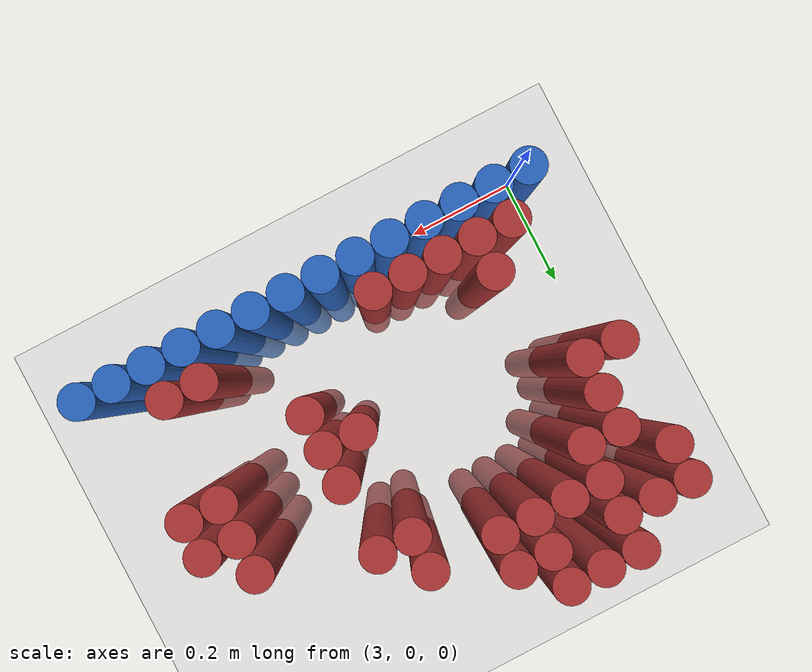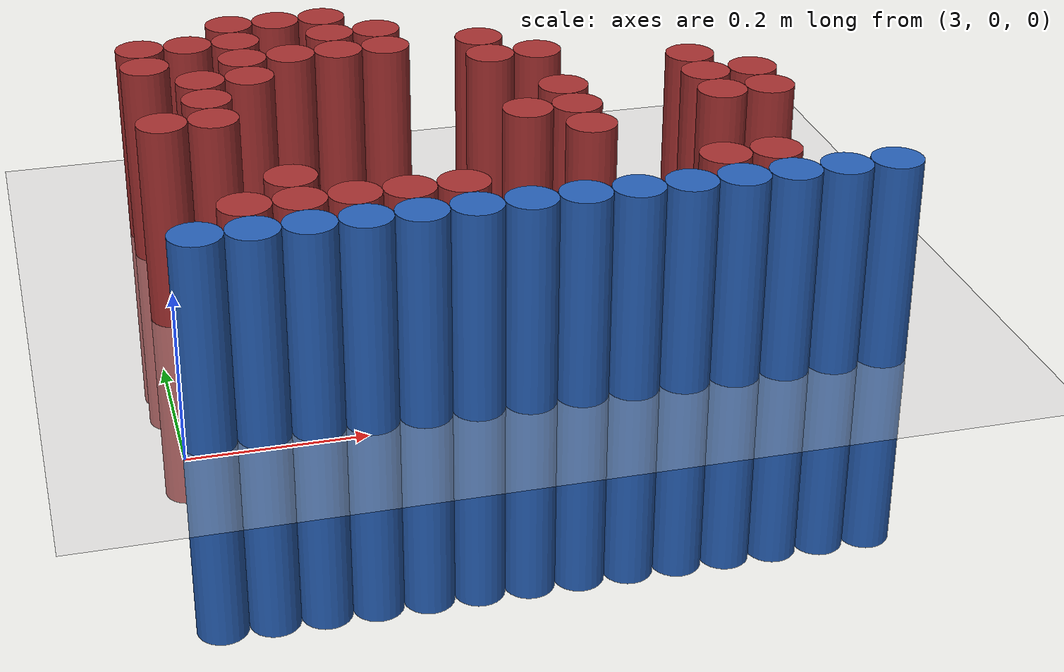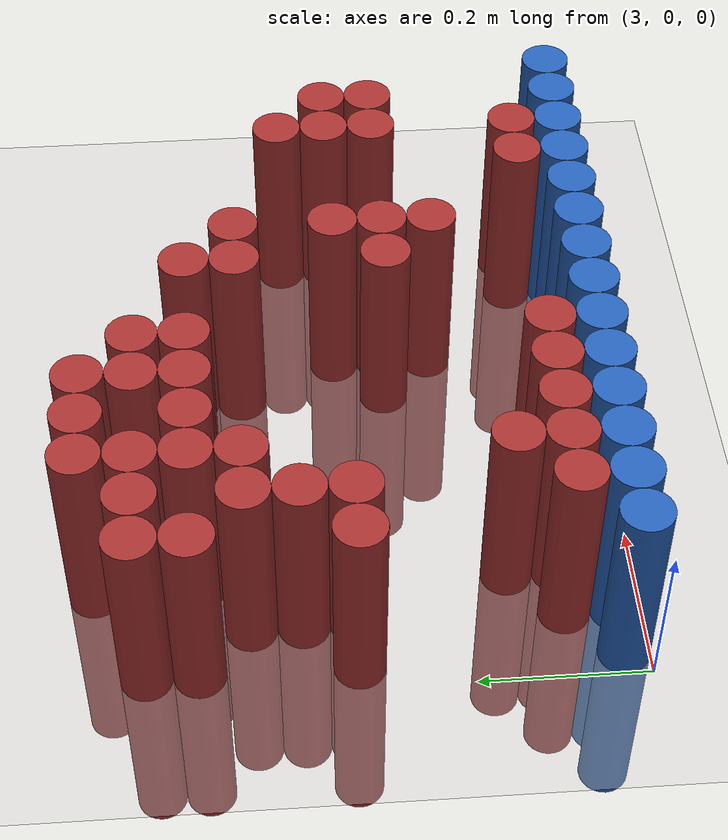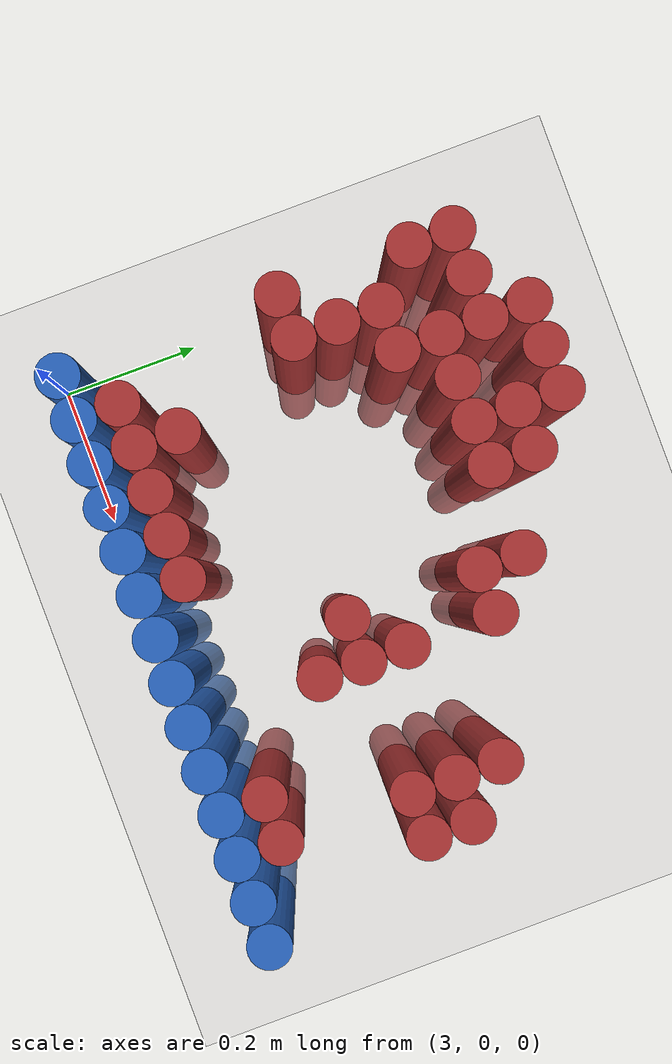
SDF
<sdf version="1.6">
 <world name="default">
  <model name="ground_plane">
   <static>1</static>
   <link name="link">
    <collision name="collision">
     <geometry><plane><normal>0 0 1</normal><size>100 100</size></plane></geometry>
     <surface><friction><ode><mu>100</mu><mu2>50</mu2></ode></friction></surface>
    </collision>
    <visual name="visual">
     <cast_shadows>0</cast_shadows>
     <geometry><plane><normal>0 0 1</normal><size>100 100</size></plane></geometry>
     <material>
      <script><uri>file://media/materials/scripts/gazebo.material</uri><name>Gazebo/Grey</name></script>
     </material>
    </visual>
   </link>
  </model>
  <model name="unit_cylinder_247">
   <static>1</static>
   <pose>3.150000 0.630000 0.000000 0.000000 0.000000 0.000000</pose>
   <link name="link">
    <inertial>
     <mass>1</mass>
     <inertia><ixx>0.145833</ixx><ixy>0</ixy><ixz>0</ixz><iyy>0.145833</iyy><iyz>0</iyz><izz>0.125</izz></inertia>
    </inertial>
    <collision name="collision">
     <geometry><cylinder><radius>0.030000</radius><length>0.5</length></cylinder></geometry>
    </collision>
    <visual name="visual">
     <geometry><cylinder><radius>0.030000</radius><length>0.5</length></cylinder></geometry>
     <material>
      <ambient>0.648000 0.192000 0.192000 1</ambient>
      <diffuse>0.648000 0.192000 0.192000 1</diffuse>
     </material>
     <material>
      <script><name>Gazebo/Grey</name><uri>file://media/materials/scripts/gazebo.material</uri></script>
     </material>
    </visual>
   </link>
  </model>
  <model name="unit_cylinder_248">
   <static>1</static>
   <pose>3.210000 0.630000 0.000000 0.000000 0.000000 0.000000</pose>
   <link name="link">
    <inertial>
     <mass>1</mass>
     <inertia><ixx>0.145833</ixx><ixy>0</ixy><ixz>0</ixz><iyy>0.145833</iyy><iyz>0</iyz><izz>0.125</izz></inertia>
    </inertial>
    <collision name="collision">
     <geometry><cylinder><radius>0.030000</radius><length>0.5</length></cylinder></geometry>
    </collision>
    <visual name="visual">
     <geometry><cylinder><radius>0.030000</radius><length>0.5</length></cylinder></geometry>
     <material>
      <ambient>0.648000 0.192000 0.192000 1</ambient>
      <diffuse>0.648000 0.192000 0.192000 1</diffuse>
     </material>
     <material>
      <script><name>Gazebo/Grey</name><uri>file://media/materials/scripts/gazebo.material</uri></script>
     </material>
    </visual>
   </link>
  </model>
  <model name="unit_cylinder_249">
   <static>1</static>
   <pose>3.270000 0.630000 0.000000 0.000000 0.000000 0.000000</pose>
   <link name="link">
    <inertial>
     <mass>1</mass>
     <inertia><ixx>0.145833</ixx><ixy>0</ixy><ixz>0</ixz><iyy>0.145833</iyy><iyz>0</iyz><izz>0.125</izz></inertia>
    </inertial>
    <collision name="collision">
     <geometry><cylinder><radius>0.030000</radius><length>0.5</length></cylinder></geometry>
    </collision>
    <visual name="visual">
     <geometry><cylinder><radius>0.030000</radius><length>0.5</length></cylinder></geometry>
     <material>
      <ambient>0.648000 0.192000 0.192000 1</ambient>
      <diffuse>0.648000 0.192000 0.192000 1</diffuse>
     </material>
     <material>
      <script><name>Gazebo/Grey</name><uri>file://media/materials/scripts/gazebo.material</uri></script>
     </material>
    </visual>
   </link>
  </model>
  <model name="unit_cylinder_258">
   <static>1</static>
   <pose>3.030000 0.570000 0.000000 0.000000 0.000000 0.000000</pose>
   <link name="link">
    <inertial>
     <mass>1</mass>
     <inertia><ixx>0.145833</ixx><ixy>0</ixy><ixz>0</ixz><iyy>0.145833</iyy><iyz>0</iyz><izz>0.125</izz></inertia>
    </inertial>
    <collision name="collision">
     <geometry><cylinder><radius>0.030000</radius><length>0.5</length></cylinder></geometry>
    </collision>
    <visual name="visual">
     <geometry><cylinder><radius>0.030000</radius><length>0.5</length></cylinder></geometry>
     <material>
      <ambient>0.648000 0.192000 0.192000 1</ambient>
      <diffuse>0.648000 0.192000 0.192000 1</diffuse>
     </material>
     <material>
      <script><name>Gazebo/Grey</name><uri>file://media/materials/scripts/gazebo.material</uri></script>
     </material>
    </visual>
   </link>
  </model>
  <model name="unit_cylinder_259">
   <static>1</static>
   <pose>3.090000 0.570000 0.000000 0.000000 0.000000 0.000000</pose>
   <link name="link">
    <inertial>
     <mass>1</mass>
     <inertia><ixx>0.145833</ixx><ixy>0</ixy><ixz>0</ixz><iyy>0.145833</iyy><iyz>0</iyz><izz>0.125</izz></inertia>
    </inertial>
    <collision name="collision">
     <geometry><cylinder><radius>0.030000</radius><length>0.5</length></cylinder></geometry>
    </collision>
    <visual name="visual">
     <geometry><cylinder><radius>0.030000</radius><length>0.5</length></cylinder></geometry>
     <material>
      <ambient>0.648000 0.192000 0.192000 1</ambient>
      <diffuse>0.648000 0.192000 0.192000 1</diffuse>
     </material>
     <material>
      <script><name>Gazebo/Grey</name><uri>file://media/materials/scripts/gazebo.material</uri></script>
     </material>
    </visual>
   </link>
  </model>
  <model name="unit_cylinder_260">
   <static>1</static>
   <pose>3.150000 0.570000 0.000000 0.000000 0.000000 0.000000</pose>
   <link name="link">
    <inertial>
     <mass>1</mass>
     <inertia><ixx>0.145833</ixx><ixy>0</ixy><ixz>0</ixz><iyy>0.145833</iyy><iyz>0</iyz><izz>0.125</izz></inertia>
    </inertial>
    <collision name="collision">
     <geometry><cylinder><radius>0.030000</radius><length>0.5</length></cylinder></geometry>
    </collision>
    <visual name="visual">
     <geometry><cylinder><radius>0.030000</radius><length>0.5</length></cylinder></geometry>
     <material>
      <ambient>0.648000 0.192000 0.192000 1</ambient>
      <diffuse>0.648000 0.192000 0.192000 1</diffuse>
     </material>
     <material>
      <script><name>Gazebo/Grey</name><uri>file://media/materials/scripts/gazebo.material</uri></script>
     </material>
    </visual>
   </link>
  </model>
  <model name="unit_cylinder_261">
   <static>1</static>
   <pose>3.270000 0.570000 0.000000 0.000000 0.000000 0.000000</pose>
   <link name="link">
    <inertial>
     <mass>1</mass>
     <inertia><ixx>0.145833</ixx><ixy>0</ixy><ixz>0</ixz><iyy>0.145833</iyy><iyz>0</iyz><izz>0.125</izz></inertia>
    </inertial>
    <collision name="collision">
     <geometry><cylinder><radius>0.030000</radius><length>0.5</length></cylinder></geometry>
    </collision>
    <visual name="visual">
     <geometry><cylinder><radius>0.030000</radius><length>0.5</length></cylinder></geometry>
     <material>
      <ambient>0.648000 0.192000 0.192000 1</ambient>
      <diffuse>0.648000 0.192000 0.192000 1</diffuse>
     </material>
     <material>
      <script><name>Gazebo/Grey</name><uri>file://media/materials/scripts/gazebo.material</uri></script>
     </material>
    </visual>
   </link>
  </model>
  <model name="unit_cylinder_262">
   <static>1</static>
   <pose>3.330000 0.570000 0.000000 0.000000 0.000000 0.000000</pose>
   <link name="link">
    <inertial>
     <mass>1</mass>
     <inertia><ixx>0.145833</ixx><ixy>0</ixy><ixz>0</ixz><iyy>0.145833</iyy><iyz>0</iyz><izz>0.125</izz></inertia>
    </inertial>
    <collision name="collision">
     <geometry><cylinder><radius>0.030000</radius><length>0.5</length></cylinder></geometry>
    </collision>
    <visual name="visual">
     <geometry><cylinder><radius>0.030000</radius><length>0.5</length></cylinder></geometry>
     <material>
      <ambient>0.648000 0.192000 0.192000 1</ambient>
      <diffuse>0.648000 0.192000 0.192000 1</diffuse>
     </material>
     <material>
      <script><name>Gazebo/Grey</name><uri>file://media/materials/scripts/gazebo.material</uri></script>
     </material>
    </visual>
   </link>
  </model>
  <model name="unit_cylinder_271">
   <static>1</static>
   <pose>3.030000 0.510000 0.000000 0.000000 0.000000 0.000000</pose>
   <link name="link">
    <inertial>
     <mass>1</mass>
     <inertia><ixx>0.145833</ixx><ixy>0</ixy><ixz>0</ixz><iyy>0.145833</iyy><iyz>0</iyz><izz>0.125</izz></inertia>
    </inertial>
    <collision name="collision">
     <geometry><cylinder><radius>0.030000</radius><length>0.5</length></cylinder></geometry>
    </collision>
    <visual name="visual">
     <geometry><cylinder><radius>0.030000</radius><length>0.5</length></cylinder></geometry>
     <material>
      <ambient>0.648000 0.192000 0.192000 1</ambient>
      <diffuse>0.648000 0.192000 0.192000 1</diffuse>
     </material>
     <material>
      <script><name>Gazebo/Grey</name><uri>file://media/materials/scripts/gazebo.material</uri></script>
     </material>
    </visual>
   </link>
  </model>
  <model name="unit_cylinder_272">
   <static>1</static>
   <pose>3.150000 0.510000 0.000000 0.000000 0.000000 0.000000</pose>
   <link name="link">
    <inertial>
     <mass>1</mass>
     <inertia><ixx>0.145833</ixx><ixy>0</ixy><ixz>0</ixz><iyy>0.145833</iyy><iyz>0</iyz><izz>0.125</izz></inertia>
    </inertial>
    <collision name="collision">
     <geometry><cylinder><radius>0.030000</radius><length>0.5</length></cylinder></geometry>
    </collision>
    <visual name="visual">
     <geometry><cylinder><radius>0.030000</radius><length>0.5</length></cylinder></geometry>
     <material>
      <ambient>0.648000 0.192000 0.192000 1</ambient>
      <diffuse>0.648000 0.192000 0.192000 1</diffuse>
     </material>
     <material>
      <script><name>Gazebo/Grey</name><uri>file://media/materials/scripts/gazebo.material</uri></script>
     </material>
    </visual>
   </link>
  </model>
  <model name="unit_cylinder_273">
   <static>1</static>
   <pose>3.210000 0.510000 0.000000 0.000000 0.000000 0.000000</pose>
   <link name="link">
    <inertial>
     <mass>1</mass>
     <inertia><ixx>0.145833</ixx><ixy>0</ixy><ixz>0</ixz><iyy>0.145833</iyy><iyz>0</iyz><izz>0.125</izz></inertia>
    </inertial>
    <collision name="collision">
     <geometry><cylinder><radius>0.030000</radius><length>0.5</length></cylinder></geometry>
    </collision>
    <visual name="visual">
     <geometry><cylinder><radius>0.030000</radius><length>0.5</length></cylinder></geometry>
     <material>
      <ambient>0.648000 0.192000 0.192000 1</ambient>
      <diffuse>0.648000 0.192000 0.192000 1</diffuse>
     </material>
     <material>
      <script><name>Gazebo/Grey</name><uri>file://media/materials/scripts/gazebo.material</uri></script>
     </material>
    </visual>
   </link>
  </model>
  <model name="unit_cylinder_274">
   <static>1</static>
   <pose>3.270000 0.510000 0.000000 0.000000 0.000000 0.000000</pose>
   <link name="link">
    <inertial>
     <mass>1</mass>
     <inertia><ixx>0.145833</ixx><ixy>0</ixy><ixz>0</ixz><iyy>0.145833</iyy><iyz>0</iyz><izz>0.125</izz></inertia>
    </inertial>
    <collision name="collision">
     <geometry><cylinder><radius>0.030000</radius><length>0.5</length></cylinder></geometry>
    </collision>
    <visual name="visual">
     <geometry><cylinder><radius>0.030000</radius><length>0.5</length></cylinder></geometry>
     <material>
      <ambient>0.648000 0.192000 0.192000 1</ambient>
      <diffuse>0.648000 0.192000 0.192000 1</diffuse>
     </material>
     <material>
      <script><name>Gazebo/Grey</name><uri>file://media/materials/scripts/gazebo.material</uri></script>
     </material>
    </visual>
   </link>
  </model>
  <model name="unit_cylinder_275">
   <static>1</static>
   <pose>3.330000 0.510000 0.000000 0.000000 0.000000 0.000000</pose>
   <link name="link">
    <inertial>
     <mass>1</mass>
     <inertia><ixx>0.145833</ixx><ixy>0</ixy><ixz>0</ixz><iyy>0.145833</iyy><iyz>0</iyz><izz>0.125</izz></inertia>
    </inertial>
    <collision name="collision">
     <geometry><cylinder><radius>0.030000</radius><length>0.5</length></cylinder></geometry>
    </collision>
    <visual name="visual">
     <geometry><cylinder><radius>0.030000</radius><length>0.5</length></cylinder></geometry>
     <material>
      <ambient>0.648000 0.192000 0.192000 1</ambient>
      <diffuse>0.648000 0.192000 0.192000 1</diffuse>
     </material>
     <material>
      <script><name>Gazebo/Grey</name><uri>file://media/materials/scripts/gazebo.material</uri></script>
     </material>
    </visual>
   </link>
  </model>
  <model name="unit_cylinder_276">
   <static>1</static>
   <pose>3.450000 0.510000 0.000000 0.000000 0.000000 0.000000</pose>
   <link name="link">
    <inertial>
     <mass>1</mass>
     <inertia><ixx>0.145833</ixx><ixy>0</ixy><ixz>0</ixz><iyy>0.145833</iyy><iyz>0</iyz><izz>0.125</izz></inertia>
    </inertial>
    <collision name="collision">
     <geometry><cylinder><radius>0.030000</radius><length>0.5</length></cylinder></geometry>
    </collision>
    <visual name="visual">
     <geometry><cylinder><radius>0.030000</radius><length>0.5</length></cylinder></geometry>
     <material>
      <ambient>0.648000 0.192000 0.192000 1</ambient>
      <diffuse>0.648000 0.192000 0.192000 1</diffuse>
     </material>
     <material>
      <script><name>Gazebo/Grey</name><uri>file://media/materials/scripts/gazebo.material</uri></script>
     </material>
    </visual>
   </link>
  </model>
  <model name="unit_cylinder_282">
   <static>1</static>
   <pose>3.090000 0.450000 0.000000 0.000000 0.000000 0.000000</pose>
   <link name="link">
    <inertial>
     <mass>1</mass>
     <inertia><ixx>0.145833</ixx><ixy>0</ixy><ixz>0</ixz><iyy>0.145833</iyy><iyz>0</iyz><izz>0.125</izz></inertia>
    </inertial>
    <collision name="collision">
     <geometry><cylinder><radius>0.030000</radius><length>0.5</length></cylinder></geometry>
    </collision>
    <visual name="visual">
     <geometry><cylinder><radius>0.030000</radius><length>0.5</length></cylinder></geometry>
     <material>
      <ambient>0.648000 0.192000 0.192000 1</ambient>
      <diffuse>0.648000 0.192000 0.192000 1</diffuse>
     </material>
     <material>
      <script><name>Gazebo/Grey</name><uri>file://media/materials/scripts/gazebo.material</uri></script>
     </material>
    </visual>
   </link>
  </model>
  <model name="unit_cylinder_283">
   <static>1</static>
   <pose>3.150000 0.450000 0.000000 0.000000 0.000000 0.000000</pose>
   <link name="link">
    <inertial>
     <mass>1</mass>
     <inertia><ixx>0.145833</ixx><ixy>0</ixy><ixz>0</ixz><iyy>0.145833</iyy><iyz>0</iyz><izz>0.125</izz></inertia>
    </inertial>
    <collision name="collision">
     <geometry><cylinder><radius>0.030000</radius><length>0.5</length></cylinder></geometry>
    </collision>
    <visual name="visual">
     <geometry><cylinder><radius>0.030000</radius><length>0.5</length></cylinder></geometry>
     <material>
      <ambient>0.648000 0.192000 0.192000 1</ambient>
      <diffuse>0.648000 0.192000 0.192000 1</diffuse>
     </material>
     <material>
      <script><name>Gazebo/Grey</name><uri>file://media/materials/scripts/gazebo.material</uri></script>
     </material>
    </visual>
   </link>
  </model>
  <model name="unit_cylinder_284">
   <static>1</static>
   <pose>3.450000 0.450000 0.000000 0.000000 0.000000 0.000000</pose>
   <link name="link">
    <inertial>
     <mass>1</mass>
     <inertia><ixx>0.145833</ixx><ixy>0</ixy><ixz>0</ixz><iyy>0.145833</iyy><iyz>0</iyz><izz>0.125</izz></inertia>
    </inertial>
    <collision name="collision">
     <geometry><cylinder><radius>0.030000</radius><length>0.5</length></cylinder></geometry>
    </collision>
    <visual name="visual">
     <geometry><cylinder><radius>0.030000</radius><length>0.5</length></cylinder></geometry>
     <material>
      <ambient>0.648000 0.192000 0.192000 1</ambient>
      <diffuse>0.648000 0.192000 0.192000 1</diffuse>
     </material>
     <material>
      <script><name>Gazebo/Grey</name><uri>file://media/materials/scripts/gazebo.material</uri></script>
     </material>
    </visual>
   </link>
  </model>
  <model name="unit_cylinder_285">
   <static>1</static>
   <pose>3.510000 0.450000 0.000000 0.000000 0.000000 0.000000</pose>
   <link name="link">
    <inertial>
     <mass>1</mass>
     <inertia><ixx>0.145833</ixx><ixy>0</ixy><ixz>0</ixz><iyy>0.145833</iyy><iyz>0</iyz><izz>0.125</izz></inertia>
    </inertial>
    <collision name="collision">
     <geometry><cylinder><radius>0.030000</radius><length>0.5</length></cylinder></geometry>
    </collision>
    <visual name="visual">
     <geometry><cylinder><radius>0.030000</radius><length>0.5</length></cylinder></geometry>
     <material>
      <ambient>0.648000 0.192000 0.192000 1</ambient>
      <diffuse>0.648000 0.192000 0.192000 1</diffuse>
     </material>
     <material>
      <script><name>Gazebo/Grey</name><uri>file://media/materials/scripts/gazebo.material</uri></script>
     </material>
    </visual>
   </link>
  </model>
  <model name="unit_cylinder_293">
   <static>1</static>
   <pose>3.090000 0.390000 0.000000 0.000000 0.000000 0.000000</pose>
   <link name="link">
    <inertial>
     <mass>1</mass>
     <inertia><ixx>0.145833</ixx><ixy>0</ixy><ixz>0</ixz><iyy>0.145833</iyy><iyz>0</iyz><izz>0.125</izz></inertia>
    </inertial>
    <collision name="collision">
     <geometry><cylinder><radius>0.030000</radius><length>0.5</length></cylinder></geometry>
    </collision>
    <visual name="visual">
     <geometry><cylinder><radius>0.030000</radius><length>0.5</length></cylinder></geometry>
     <material>
      <ambient>0.648000 0.192000 0.192000 1</ambient>
      <diffuse>0.648000 0.192000 0.192000 1</diffuse>
     </material>
     <material>
      <script><name>Gazebo/Grey</name><uri>file://media/materials/scripts/gazebo.material</uri></script>
     </material>
    </visual>
   </link>
  </model>
  <model name="unit_cylinder_294">
   <static>1</static>
   <pose>3.690000 0.390000 0.000000 0.000000 0.000000 0.000000</pose>
   <link name="link">
    <inertial>
     <mass>1</mass>
     <inertia><ixx>0.145833</ixx><ixy>0</ixy><ixz>0</ixz><iyy>0.145833</iyy><iyz>0</iyz><izz>0.125</izz></inertia>
    </inertial>
    <collision name="collision">
     <geometry><cylinder><radius>0.030000</radius><length>0.5</length></cylinder></geometry>
    </collision>
    <visual name="visual">
     <geometry><cylinder><radius>0.030000</radius><length>0.5</length></cylinder></geometry>
     <material>
      <ambient>0.648000 0.192000 0.192000 1</ambient>
      <diffuse>0.648000 0.192000 0.192000 1</diffuse>
     </material>
     <material>
      <script><name>Gazebo/Grey</name><uri>file://media/materials/scripts/gazebo.material</uri></script>
     </material>
    </visual>
   </link>
  </model>
  <model name="unit_cylinder_304">
   <static>1</static>
   <pose>3.030000 0.330000 0.000000 0.000000 0.000000 0.000000</pose>
   <link name="link">
    <inertial>
     <mass>1</mass>
     <inertia><ixx>0.145833</ixx><ixy>0</ixy><ixz>0</ixz><iyy>0.145833</iyy><iyz>0</iyz><izz>0.125</izz></inertia>
    </inertial>
    <collision name="collision">
     <geometry><cylinder><radius>0.030000</radius><length>0.5</length></cylinder></geometry>
    </collision>
    <visual name="visual">
     <geometry><cylinder><radius>0.030000</radius><length>0.5</length></cylinder></geometry>
     <material>
      <ambient>0.648000 0.192000 0.192000 1</ambient>
      <diffuse>0.648000 0.192000 0.192000 1</diffuse>
     </material>
     <material>
      <script><name>Gazebo/Grey</name><uri>file://media/materials/scripts/gazebo.material</uri></script>
     </material>
    </visual>
   </link>
  </model>
  <model name="unit_cylinder_305">
   <static>1</static>
   <pose>3.090000 0.330000 0.000000 0.000000 0.000000 0.000000</pose>
   <link name="link">
    <inertial>
     <mass>1</mass>
     <inertia><ixx>0.145833</ixx><ixy>0</ixy><ixz>0</ixz><iyy>0.145833</iyy><iyz>0</iyz><izz>0.125</izz></inertia>
    </inertial>
    <collision name="collision">
     <geometry><cylinder><radius>0.030000</radius><length>0.5</length></cylinder></geometry>
    </collision>
    <visual name="visual">
     <geometry><cylinder><radius>0.030000</radius><length>0.5</length></cylinder></geometry>
     <material>
      <ambient>0.648000 0.192000 0.192000 1</ambient>
      <diffuse>0.648000 0.192000 0.192000 1</diffuse>
     </material>
     <material>
      <script><name>Gazebo/Grey</name><uri>file://media/materials/scripts/gazebo.material</uri></script>
     </material>
    </visual>
   </link>
  </model>
  <model name="unit_cylinder_306">
   <static>1</static>
   <pose>3.510000 0.330000 0.000000 0.000000 0.000000 0.000000</pose>
   <link name="link">
    <inertial>
     <mass>1</mass>
     <inertia><ixx>0.145833</ixx><ixy>0</ixy><ixz>0</ixz><iyy>0.145833</iyy><iyz>0</iyz><izz>0.125</izz></inertia>
    </inertial>
    <collision name="collision">
     <geometry><cylinder><radius>0.030000</radius><length>0.5</length></cylinder></geometry>
    </collision>
    <visual name="visual">
     <geometry><cylinder><radius>0.030000</radius><length>0.5</length></cylinder></geometry>
     <material>
      <ambient>0.648000 0.192000 0.192000 1</ambient>
      <diffuse>0.648000 0.192000 0.192000 1</diffuse>
     </material>
     <material>
      <script><name>Gazebo/Grey</name><uri>file://media/materials/scripts/gazebo.material</uri></script>
     </material>
    </visual>
   </link>
  </model>
  <model name="unit_cylinder_307">
   <static>1</static>
   <pose>3.690000 0.330000 0.000000 0.000000 0.000000 0.000000</pose>
   <link name="link">
    <inertial>
     <mass>1</mass>
     <inertia><ixx>0.145833</ixx><ixy>0</ixy><ixz>0</ixz><iyy>0.145833</iyy><iyz>0</iyz><izz>0.125</izz></inertia>
    </inertial>
    <collision name="collision">
     <geometry><cylinder><radius>0.030000</radius><length>0.5</length></cylinder></geometry>
    </collision>
    <visual name="visual">
     <geometry><cylinder><radius>0.030000</radius><length>0.5</length></cylinder></geometry>
     <material>
      <ambient>0.648000 0.192000 0.192000 1</ambient>
      <diffuse>0.648000 0.192000 0.192000 1</diffuse>
     </material>
     <material>
      <script><name>Gazebo/Grey</name><uri>file://media/materials/scripts/gazebo.material</uri></script>
     </material>
    </visual>
   </link>
  </model>
  <model name="unit_cylinder_308">
   <static>1</static>
   <pose>3.750000 0.330000 0.000000 0.000000 0.000000 0.000000</pose>
   <link name="link">
    <inertial>
     <mass>1</mass>
     <inertia><ixx>0.145833</ixx><ixy>0</ixy><ixz>0</ixz><iyy>0.145833</iyy><iyz>0</iyz><izz>0.125</izz></inertia>
    </inertial>
    <collision name="collision">
     <geometry><cylinder><radius>0.030000</radius><length>0.5</length></cylinder></geometry>
    </collision>
    <visual name="visual">
     <geometry><cylinder><radius>0.030000</radius><length>0.5</length></cylinder></geometry>
     <material>
      <ambient>0.648000 0.192000 0.192000 1</ambient>
      <diffuse>0.648000 0.192000 0.192000 1</diffuse>
     </material>
     <material>
      <script><name>Gazebo/Grey</name><uri>file://media/materials/scripts/gazebo.material</uri></script>
     </material>
    </visual>
   </link>
  </model>
  <model name="unit_cylinder_310">
   <static>1</static>
   <pose>3.450000 0.270000 0.000000 0.000000 0.000000 0.000000</pose>
   <link name="link">
    <inertial>
     <mass>1</mass>
     <inertia><ixx>0.145833</ixx><ixy>0</ixy><ixz>0</ixz><iyy>0.145833</iyy><iyz>0</iyz><izz>0.125</izz></inertia>
    </inertial>
    <collision name="collision">
     <geometry><cylinder><radius>0.030000</radius><length>0.5</length></cylinder></geometry>
    </collision>
    <visual name="visual">
     <geometry><cylinder><radius>0.030000</radius><length>0.5</length></cylinder></geometry>
     <material>
      <ambient>0.648000 0.192000 0.192000 1</ambient>
      <diffuse>0.648000 0.192000 0.192000 1</diffuse>
     </material>
     <material>
      <script><name>Gazebo/Grey</name><uri>file://media/materials/scripts/gazebo.material</uri></script>
     </material>
    </visual>
   </link>
  </model>
  <model name="unit_cylinder_311">
   <static>1</static>
   <pose>3.510000 0.270000 0.000000 0.000000 0.000000 0.000000</pose>
   <link name="link">
    <inertial>
     <mass>1</mass>
     <inertia><ixx>0.145833</ixx><ixy>0</ixy><ixz>0</ixz><iyy>0.145833</iyy><iyz>0</iyz><izz>0.125</izz></inertia>
    </inertial>
    <collision name="collision">
     <geometry><cylinder><radius>0.030000</radius><length>0.5</length></cylinder></geometry>
    </collision>
    <visual name="visual">
     <geometry><cylinder><radius>0.030000</radius><length>0.5</length></cylinder></geometry>
     <material>
      <ambient>0.648000 0.192000 0.192000 1</ambient>
      <diffuse>0.648000 0.192000 0.192000 1</diffuse>
     </material>
     <material>
      <script><name>Gazebo/Grey</name><uri>file://media/materials/scripts/gazebo.material</uri></script>
     </material>
    </visual>
   </link>
  </model>
  <model name="unit_cylinder_312">
   <static>1</static>
   <pose>3.690000 0.270000 0.000000 0.000000 0.000000 0.000000</pose>
   <link name="link">
    <inertial>
     <mass>1</mass>
     <inertia><ixx>0.145833</ixx><ixy>0</ixy><ixz>0</ixz><iyy>0.145833</iyy><iyz>0</iyz><izz>0.125</izz></inertia>
    </inertial>
    <collision name="collision">
     <geometry><cylinder><radius>0.030000</radius><length>0.5</length></cylinder></geometry>
    </collision>
    <visual name="visual">
     <geometry><cylinder><radius>0.030000</radius><length>0.5</length></cylinder></geometry>
     <material>
      <ambient>0.648000 0.192000 0.192000 1</ambient>
      <diffuse>0.648000 0.192000 0.192000 1</diffuse>
     </material>
     <material>
      <script><name>Gazebo/Grey</name><uri>file://media/materials/scripts/gazebo.material</uri></script>
     </material>
    </visual>
   </link>
  </model>
  <model name="unit_cylinder_313">
   <static>1</static>
   <pose>3.750000 0.270000 0.000000 0.000000 0.000000 0.000000</pose>
   <link name="link">
    <inertial>
     <mass>1</mass>
     <inertia><ixx>0.145833</ixx><ixy>0</ixy><ixz>0</ixz><iyy>0.145833</iyy><iyz>0</iyz><izz>0.125</izz></inertia>
    </inertial>
    <collision name="collision">
     <geometry><cylinder><radius>0.030000</radius><length>0.5</length></cylinder></geometry>
    </collision>
    <visual name="visual">
     <geometry><cylinder><radius>0.030000</radius><length>0.5</length></cylinder></geometry>
     <material>
      <ambient>0.648000 0.192000 0.192000 1</ambient>
      <diffuse>0.648000 0.192000 0.192000 1</diffuse>
     </material>
     <material>
      <script><name>Gazebo/Grey</name><uri>file://media/materials/scripts/gazebo.material</uri></script>
     </material>
    </visual>
   </link>
  </model>
  <model name="unit_cylinder_314">
   <static>1</static>
   <pose>3.510000 0.210000 0.000000 0.000000 0.000000 0.000000</pose>
   <link name="link">
    <inertial>
     <mass>1</mass>
     <inertia><ixx>0.145833</ixx><ixy>0</ixy><ixz>0</ixz><iyy>0.145833</iyy><iyz>0</iyz><izz>0.125</izz></inertia>
    </inertial>
    <collision name="collision">
     <geometry><cylinder><radius>0.030000</radius><length>0.5</length></cylinder></geometry>
    </collision>
    <visual name="visual">
     <geometry><cylinder><radius>0.030000</radius><length>0.5</length></cylinder></geometry>
     <material>
      <ambient>0.648000 0.192000 0.192000 1</ambient>
      <diffuse>0.648000 0.192000 0.192000 1</diffuse>
     </material>
     <material>
      <script><name>Gazebo/Grey</name><uri>file://media/materials/scripts/gazebo.material</uri></script>
     </material>
    </visual>
   </link>
  </model>
  <model name="unit_cylinder_317">
   <static>1</static>
   <pose>3.150000 0.150000 0.000000 0.000000 0.000000 0.000000</pose>
   <link name="link">
    <inertial>
     <mass>1</mass>
     <inertia><ixx>0.145833</ixx><ixy>0</ixy><ixz>0</ixz><iyy>0.145833</iyy><iyz>0</iyz><izz>0.125</izz></inertia>
    </inertial>
    <collision name="collision">
     <geometry><cylinder><radius>0.030000</radius><length>0.5</length></cylinder></geometry>
    </collision>
    <visual name="visual">
     <geometry><cylinder><radius>0.030000</radius><length>0.5</length></cylinder></geometry>
     <material>
      <ambient>0.648000 0.192000 0.192000 1</ambient>
      <diffuse>0.648000 0.192000 0.192000 1</diffuse>
     </material>
     <material>
      <script><name>Gazebo/Grey</name><uri>file://media/materials/scripts/gazebo.material</uri></script>
     </material>
    </visual>
   </link>
  </model>
  <model name="unit_cylinder_325">
   <static>1</static>
   <pose>3.090000 0.090000 0.000000 0.000000 0.000000 0.000000</pose>
   <link name="link">
    <inertial>
     <mass>1</mass>
     <inertia><ixx>0.145833</ixx><ixy>0</ixy><ixz>0</ixz><iyy>0.145833</iyy><iyz>0</iyz><izz>0.125</izz></inertia>
    </inertial>
    <collision name="collision">
     <geometry><cylinder><radius>0.030000</radius><length>0.5</length></cylinder></geometry>
    </collision>
    <visual name="visual">
     <geometry><cylinder><radius>0.030000</radius><length>0.5</length></cylinder></geometry>
     <material>
      <ambient>0.648000 0.192000 0.192000 1</ambient>
      <diffuse>0.648000 0.192000 0.192000 1</diffuse>
     </material>
     <material>
      <script><name>Gazebo/Grey</name><uri>file://media/materials/scripts/gazebo.material</uri></script>
     </material>
    </visual>
   </link>
  </model>
  <model name="unit_cylinder_326">
   <static>1</static>
   <pose>3.150000 0.090000 0.000000 0.000000 0.000000 0.000000</pose>
   <link name="link">
    <inertial>
     <mass>1</mass>
     <inertia><ixx>0.145833</ixx><ixy>0</ixy><ixz>0</ixz><iyy>0.145833</iyy><iyz>0</iyz><izz>0.125</izz></inertia>
    </inertial>
    <collision name="collision">
     <geometry><cylinder><radius>0.030000</radius><length>0.5</length></cylinder></geometry>
    </collision>
    <visual name="visual">
     <geometry><cylinder><radius>0.030000</radius><length>0.5</length></cylinder></geometry>
     <material>
      <ambient>0.648000 0.192000 0.192000 1</ambient>
      <diffuse>0.648000 0.192000 0.192000 1</diffuse>
     </material>
     <material>
      <script><name>Gazebo/Grey</name><uri>file://media/materials/scripts/gazebo.material</uri></script>
     </material>
    </visual>
   </link>
  </model>
  <model name="unit_cylinder_327">
   <static>1</static>
   <pose>3.210000 0.090000 0.000000 0.000000 0.000000 0.000000</pose>
   <link name="link">
    <inertial>
     <mass>1</mass>
     <inertia><ixx>0.145833</ixx><ixy>0</ixy><ixz>0</ixz><iyy>0.145833</iyy><iyz>0</iyz><izz>0.125</izz></inertia>
    </inertial>
    <collision name="collision">
     <geometry><cylinder><radius>0.030000</radius><length>0.5</length></cylinder></geometry>
    </collision>
    <visual name="visual">
     <geometry><cylinder><radius>0.030000</radius><length>0.5</length></cylinder></geometry>
     <material>
      <ambient>0.648000 0.192000 0.192000 1</ambient>
      <diffuse>0.648000 0.192000 0.192000 1</diffuse>
     </material>
     <material>
      <script><name>Gazebo/Grey</name><uri>file://media/materials/scripts/gazebo.material</uri></script>
     </material>
    </visual>
   </link>
  </model>
  <model name="unit_cylinder_328">
   <static>1</static>
   <pose>3.270000 0.090000 0.000000 0.000000 0.000000 0.000000</pose>
   <link name="link">
    <inertial>
     <mass>1</mass>
     <inertia><ixx>0.145833</ixx><ixy>0</ixy><ixz>0</ixz><iyy>0.145833</iyy><iyz>0</iyz><izz>0.125</izz></inertia>
    </inertial>
    <collision name="collision">
     <geometry><cylinder><radius>0.030000</radius><length>0.5</length></cylinder></geometry>
    </collision>
    <visual name="visual">
     <geometry><cylinder><radius>0.030000</radius><length>0.5</length></cylinder></geometry>
     <material>
      <ambient>0.648000 0.192000 0.192000 1</ambient>
      <diffuse>0.648000 0.192000 0.192000 1</diffuse>
     </material>
     <material>
      <script><name>Gazebo/Grey</name><uri>file://media/materials/scripts/gazebo.material</uri></script>
     </material>
    </visual>
   </link>
  </model>
  <model name="unit_cylinder_329">
   <static>1</static>
   <pose>3.330000 0.090000 0.000000 0.000000 0.000000 0.000000</pose>
   <link name="link">
    <inertial>
     <mass>1</mass>
     <inertia><ixx>0.145833</ixx><ixy>0</ixy><ixz>0</ixz><iyy>0.145833</iyy><iyz>0</iyz><izz>0.125</izz></inertia>
    </inertial>
    <collision name="collision">
     <geometry><cylinder><radius>0.030000</radius><length>0.5</length></cylinder></geometry>
    </collision>
    <visual name="visual">
     <geometry><cylinder><radius>0.030000</radius><length>0.5</length></cylinder></geometry>
     <material>
      <ambient>0.648000 0.192000 0.192000 1</ambient>
      <diffuse>0.648000 0.192000 0.192000 1</diffuse>
     </material>
     <material>
      <script><name>Gazebo/Grey</name><uri>file://media/materials/scripts/gazebo.material</uri></script>
     </material>
    </visual>
   </link>
  </model>
  <model name="unit_cylinder_330">
   <static>1</static>
   <pose>3.630000 0.090000 0.000000 0.000000 0.000000 0.000000</pose>
   <link name="link">
    <inertial>
     <mass>1</mass>
     <inertia><ixx>0.145833</ixx><ixy>0</ixy><ixz>0</ixz><iyy>0.145833</iyy><iyz>0</iyz><izz>0.125</izz></inertia>
    </inertial>
    <collision name="collision">
     <geometry><cylinder><radius>0.030000</radius><length>0.5</length></cylinder></geometry>
    </collision>
    <visual name="visual">
     <geometry><cylinder><radius>0.030000</radius><length>0.5</length></cylinder></geometry>
     <material>
      <ambient>0.648000 0.192000 0.192000 1</ambient>
      <diffuse>0.648000 0.192000 0.192000 1</diffuse>
     </material>
     <material>
      <script><name>Gazebo/Grey</name><uri>file://media/materials/scripts/gazebo.material</uri></script>
     </material>
    </visual>
   </link>
  </model>
  <model name="unit_cylinder_331">
   <static>1</static>
   <pose>3.690000 0.090000 0.000000 0.000000 0.000000 0.000000</pose>
   <link name="link">
    <inertial>
     <mass>1</mass>
     <inertia><ixx>0.145833</ixx><ixy>0</ixy><ixz>0</ixz><iyy>0.145833</iyy><iyz>0</iyz><izz>0.125</izz></inertia>
    </inertial>
    <collision name="collision">
     <geometry><cylinder><radius>0.030000</radius><length>0.5</length></cylinder></geometry>
    </collision>
    <visual name="visual">
     <geometry><cylinder><radius>0.030000</radius><length>0.5</length></cylinder></geometry>
     <material>
      <ambient>0.648000 0.192000 0.192000 1</ambient>
      <diffuse>0.648000 0.192000 0.192000 1</diffuse>
     </material>
     <material>
      <script><name>Gazebo/Grey</name><uri>file://media/materials/scripts/gazebo.material</uri></script>
     </material>
    </visual>
   </link>
  </model>
  <model name="unit_cylinder_348">
   <static>1</static>
   <pose>3.030000 0.030000 0.000000 0.000000 0.000000 0.000000</pose>
   <link name="link">
    <inertial>
     <mass>1</mass>
     <inertia><ixx>0.145833</ixx><ixy>0</ixy><ixz>0</ixz><iyy>0.145833</iyy><iyz>0</iyz><izz>0.125</izz></inertia>
    </inertial>
    <collision name="collision">
     <geometry><cylinder><radius>0.030000</radius><length>0.5</length></cylinder></geometry>
    </collision>
    <visual name="visual">
     <geometry><cylinder><radius>0.030000</radius><length>0.5</length></cylinder></geometry>
     <material>
      <ambient>0.152000 0.379000 0.720000 1</ambient>
      <diffuse>0.152000 0.379000 0.720000 1</diffuse>
     </material>
     <material>
      <script><name>Gazebo/Grey</name><uri>file://media/materials/scripts/gazebo.material</uri></script>
     </material>
    </visual>
   </link>
  </model>
  <model name="unit_cylinder_349">
   <static>1</static>
   <pose>3.090000 0.030000 0.000000 0.000000 0.000000 0.000000</pose>
   <link name="link">
    <inertial>
     <mass>1</mass>
     <inertia><ixx>0.145833</ixx><ixy>0</ixy><ixz>0</ixz><iyy>0.145833</iyy><iyz>0</iyz><izz>0.125</izz></inertia>
    </inertial>
    <collision name="collision">
     <geometry><cylinder><radius>0.030000</radius><length>0.5</length></cylinder></geometry>
    </collision>
    <visual name="visual">
     <geometry><cylinder><radius>0.030000</radius><length>0.5</length></cylinder></geometry>
     <material>
      <ambient>0.152000 0.379000 0.720000 1</ambient>
      <diffuse>0.152000 0.379000 0.720000 1</diffuse>
     </material>
     <material>
      <script><name>Gazebo/Grey</name><uri>file://media/materials/scripts/gazebo.material</uri></script>
     </material>
    </visual>
   </link>
  </model>
  <model name="unit_cylinder_350">
   <static>1</static>
   <pose>3.150000 0.030000 0.000000 0.000000 0.000000 0.000000</pose>
   <link name="link">
    <inertial>
     <mass>1</mass>
     <inertia><ixx>0.145833</ixx><ixy>0</ixy><ixz>0</ixz><iyy>0.145833</iyy><iyz>0</iyz><izz>0.125</izz></inertia>
    </inertial>
    <collision name="collision">
     <geometry><cylinder><radius>0.030000</radius><length>0.5</length></cylinder></geometry>
    </collision>
    <visual name="visual">
     <geometry><cylinder><radius>0.030000</radius><length>0.5</length></cylinder></geometry>
     <material>
      <ambient>0.152000 0.379000 0.720000 1</ambient>
      <diffuse>0.152000 0.379000 0.720000 1</diffuse>
     </material>
     <material>
      <script><name>Gazebo/Grey</name><uri>file://media/materials/scripts/gazebo.material</uri></script>
     </material>
    </visual>
   </link>
  </model>
  <model name="unit_cylinder_351">
   <static>1</static>
   <pose>3.210000 0.030000 0.000000 0.000000 0.000000 0.000000</pose>
   <link name="link">
    <inertial>
     <mass>1</mass>
     <inertia><ixx>0.145833</ixx><ixy>0</ixy><ixz>0</ixz><iyy>0.145833</iyy><iyz>0</iyz><izz>0.125</izz></inertia>
    </inertial>
    <collision name="collision">
     <geometry><cylinder><radius>0.030000</radius><length>0.5</length></cylinder></geometry>
    </collision>
    <visual name="visual">
     <geometry><cylinder><radius>0.030000</radius><length>0.5</length></cylinder></geometry>
     <material>
      <ambient>0.152000 0.379000 0.720000 1</ambient>
      <diffuse>0.152000 0.379000 0.720000 1</diffuse>
     </material>
     <material>
      <script><name>Gazebo/Grey</name><uri>file://media/materials/scripts/gazebo.material</uri></script>
     </material>
    </visual>
   </link>
  </model>
  <model name="unit_cylinder_352">
   <static>1</static>
   <pose>3.270000 0.030000 0.000000 0.000000 0.000000 0.000000</pose>
   <link name="link">
    <inertial>
     <mass>1</mass>
     <inertia><ixx>0.145833</ixx><ixy>0</ixy><ixz>0</ixz><iyy>0.145833</iyy><iyz>0</iyz><izz>0.125</izz></inertia>
    </inertial>
    <collision name="collision">
     <geometry><cylinder><radius>0.030000</radius><length>0.5</length></cylinder></geometry>
    </collision>
    <visual name="visual">
     <geometry><cylinder><radius>0.030000</radius><length>0.5</length></cylinder></geometry>
     <material>
      <ambient>0.152000 0.379000 0.720000 1</ambient>
      <diffuse>0.152000 0.379000 0.720000 1</diffuse>
     </material>
     <material>
      <script><name>Gazebo/Grey</name><uri>file://media/materials/scripts/gazebo.material</uri></script>
     </material>
    </visual>
   </link>
  </model>
  <model name="unit_cylinder_353">
   <static>1</static>
   <pose>3.330000 0.030000 0.000000 0.000000 0.000000 0.000000</pose>
   <link name="link">
    <inertial>
     <mass>1</mass>
     <inertia><ixx>0.145833</ixx><ixy>0</ixy><ixz>0</ixz><iyy>0.145833</iyy><iyz>0</iyz><izz>0.125</izz></inertia>
    </inertial>
    <collision name="collision">
     <geometry><cylinder><radius>0.030000</radius><length>0.5</length></cylinder></geometry>
    </collision>
    <visual name="visual">
     <geometry><cylinder><radius>0.030000</radius><length>0.5</length></cylinder></geometry>
     <material>
      <ambient>0.152000 0.379000 0.720000 1</ambient>
      <diffuse>0.152000 0.379000 0.720000 1</diffuse>
     </material>
     <material>
      <script><name>Gazebo/Grey</name><uri>file://media/materials/scripts/gazebo.material</uri></script>
     </material>
    </visual>
   </link>
  </model>
  <model name="unit_cylinder_354">
   <static>1</static>
   <pose>3.390000 0.030000 0.000000 0.000000 0.000000 0.000000</pose>
   <link name="link">
    <inertial>
     <mass>1</mass>
     <inertia><ixx>0.145833</ixx><ixy>0</ixy><ixz>0</ixz><iyy>0.145833</iyy><iyz>0</iyz><izz>0.125</izz></inertia>
    </inertial>
    <collision name="collision">
     <geometry><cylinder><radius>0.030000</radius><length>0.5</length></cylinder></geometry>
    </collision>
    <visual name="visual">
     <geometry><cylinder><radius>0.030000</radius><length>0.5</length></cylinder></geometry>
     <material>
      <ambient>0.152000 0.379000 0.720000 1</ambient>
      <diffuse>0.152000 0.379000 0.720000 1</diffuse>
     </material>
     <material>
      <script><name>Gazebo/Grey</name><uri>file://media/materials/scripts/gazebo.material</uri></script>
     </material>
    </visual>
   </link>
  </model>
  <model name="unit_cylinder_355">
   <static>1</static>
   <pose>3.450000 0.030000 0.000000 0.000000 0.000000 0.000000</pose>
   <link name="link">
    <inertial>
     <mass>1</mass>
     <inertia><ixx>0.145833</ixx><ixy>0</ixy><ixz>0</ixz><iyy>0.145833</iyy><iyz>0</iyz><izz>0.125</izz></inertia>
    </inertial>
    <collision name="collision">
     <geometry><cylinder><radius>0.030000</radius><length>0.5</length></cylinder></geometry>
    </collision>
    <visual name="visual">
     <geometry><cylinder><radius>0.030000</radius><length>0.5</length></cylinder></geometry>
     <material>
      <ambient>0.152000 0.379000 0.720000 1</ambient>
      <diffuse>0.152000 0.379000 0.720000 1</diffuse>
     </material>
     <material>
      <script><name>Gazebo/Grey</name><uri>file://media/materials/scripts/gazebo.material</uri></script>
     </material>
    </visual>
   </link>
  </model>
  <model name="unit_cylinder_356">
   <static>1</static>
   <pose>3.510000 0.030000 0.000000 0.000000 0.000000 0.000000</pose>
   <link name="link">
    <inertial>
     <mass>1</mass>
     <inertia><ixx>0.145833</ixx><ixy>0</ixy><ixz>0</ixz><iyy>0.145833</iyy><iyz>0</iyz><izz>0.125</izz></inertia>
    </inertial>
    <collision name="collision">
     <geometry><cylinder><radius>0.030000</radius><length>0.5</length></cylinder></geometry>
    </collision>
    <visual name="visual">
     <geometry><cylinder><radius>0.030000</radius><length>0.5</length></cylinder></geometry>
     <material>
      <ambient>0.152000 0.379000 0.720000 1</ambient>
      <diffuse>0.152000 0.379000 0.720000 1</diffuse>
     </material>
     <material>
      <script><name>Gazebo/Grey</name><uri>file://media/materials/scripts/gazebo.material</uri></script>
     </material>
    </visual>
   </link>
  </model>
  <model name="unit_cylinder_357">
   <static>1</static>
   <pose>3.570000 0.030000 0.000000 0.000000 0.000000 0.000000</pose>
   <link name="link">
    <inertial>
     <mass>1</mass>
     <inertia><ixx>0.145833</ixx><ixy>0</ixy><ixz>0</ixz><iyy>0.145833</iyy><iyz>0</iyz><izz>0.125</izz></inertia>
    </inertial>
    <collision name="collision">
     <geometry><cylinder><radius>0.030000</radius><length>0.5</length></cylinder></geometry>
    </collision>
    <visual name="visual">
     <geometry><cylinder><radius>0.030000</radius><length>0.5</length></cylinder></geometry>
     <material>
      <ambient>0.152000 0.379000 0.720000 1</ambient>
      <diffuse>0.152000 0.379000 0.720000 1</diffuse>
     </material>
     <material>
      <script><name>Gazebo/Grey</name><uri>file://media/materials/scripts/gazebo.material</uri></script>
     </material>
    </visual>
   </link>
  </model>
  <model name="unit_cylinder_358">
   <static>1</static>
   <pose>3.630000 0.030000 0.000000 0.000000 0.000000 0.000000</pose>
   <link name="link">
    <inertial>
     <mass>1</mass>
     <inertia><ixx>0.145833</ixx><ixy>0</ixy><ixz>0</ixz><iyy>0.145833</iyy><iyz>0</iyz><izz>0.125</izz></inertia>
    </inertial>
    <collision name="collision">
     <geometry><cylinder><radius>0.030000</radius><length>0.5</length></cylinder></geometry>
    </collision>
    <visual name="visual">
     <geometry><cylinder><radius>0.030000</radius><length>0.5</length></cylinder></geometry>
     <material>
      <ambient>0.152000 0.379000 0.720000 1</ambient>
      <diffuse>0.152000 0.379000 0.720000 1</diffuse>
     </material>
     <material>
      <script><name>Gazebo/Grey</name><uri>file://media/materials/scripts/gazebo.material</uri></script>
     </material>
    </visual>
   </link>
  </model>
  <model name="unit_cylinder_359">
   <static>1</static>
   <pose>3.690000 0.030000 0.000000 0.000000 0.000000 0.000000</pose>
   <link name="link">
    <inertial>
     <mass>1</mass>
     <inertia><ixx>0.145833</ixx><ixy>0</ixy><ixz>0</ixz><iyy>0.145833</iyy><iyz>0</iyz><izz>0.125</izz></inertia>
    </inertial>
    <collision name="collision">
     <geometry><cylinder><radius>0.030000</radius><length>0.5</length></cylinder></geometry>
    </collision>
    <visual name="visual">
     <geometry><cylinder><radius>0.030000</radius><length>0.5</length></cylinder></geometry>
     <material>
      <ambient>0.152000 0.379000 0.720000 1</ambient>
      <diffuse>0.152000 0.379000 0.720000 1</diffuse>
     </material>
     <material>
      <script><name>Gazebo/Grey</name><uri>file://media/materials/scripts/gazebo.material</uri></script>
     </material>
    </visual>
   </link>
  </model>
  <model name="unit_cylinder_360">
   <static>1</static>
   <pose>3.750000 0.030000 0.000000 0.000000 0.000000 0.000000</pose>
   <link name="link">
    <inertial>
     <mass>1</mass>
     <inertia><ixx>0.145833</ixx><ixy>0</ixy><ixz>0</ixz><iyy>0.145833</iyy><iyz>0</iyz><izz>0.125</izz></inertia>
    </inertial>
    <collision name="collision">
     <geometry><cylinder><radius>0.030000</radius><length>0.5</length></cylinder></geometry>
    </collision>
    <visual name="visual">
     <geometry><cylinder><radius>0.030000</radius><length>0.5</length></cylinder></geometry>
     <material>
      <ambient>0.152000 0.379000 0.720000 1</ambient>
      <diffuse>0.152000 0.379000 0.720000 1</diffuse>
     </material>
     <material>
      <script><name>Gazebo/Grey</name><uri>file://media/materials/scripts/gazebo.material</uri></script>
     </material>
    </visual>
   </link>
  </model>
  <model name="unit_cylinder_361">
   <static>1</static>
   <pose>3.810000 0.030000 0.000000 0.000000 0.000000 0.000000</pose>
   <link name="link">
    <inertial>
     <mass>1</mass>
     <inertia><ixx>0.145833</ixx><ixy>0</ixy><ixz>0</ixz><iyy>0.145833</iyy><iyz>0</iyz><izz>0.125</izz></inertia>
    </inertial>
    <collision name="collision">
     <geometry><cylinder><radius>0.030000</radius><length>0.5</length></cylinder></geometry>
    </collision>
    <visual name="visual">
     <geometry><cylinder><radius>0.030000</radius><length>0.5</length></cylinder></geometry>
     <material>
      <ambient>0.152000 0.379000 0.720000 1</ambient>
      <diffuse>0.152000 0.379000 0.720000 1</diffuse>
     </material>
     <material>
      <script><name>Gazebo/Grey</name><uri>file://media/materials/scripts/gazebo.material</uri></script>
     </material>
    </visual>
   </link>
  </model>
 </world>
</sdf>
